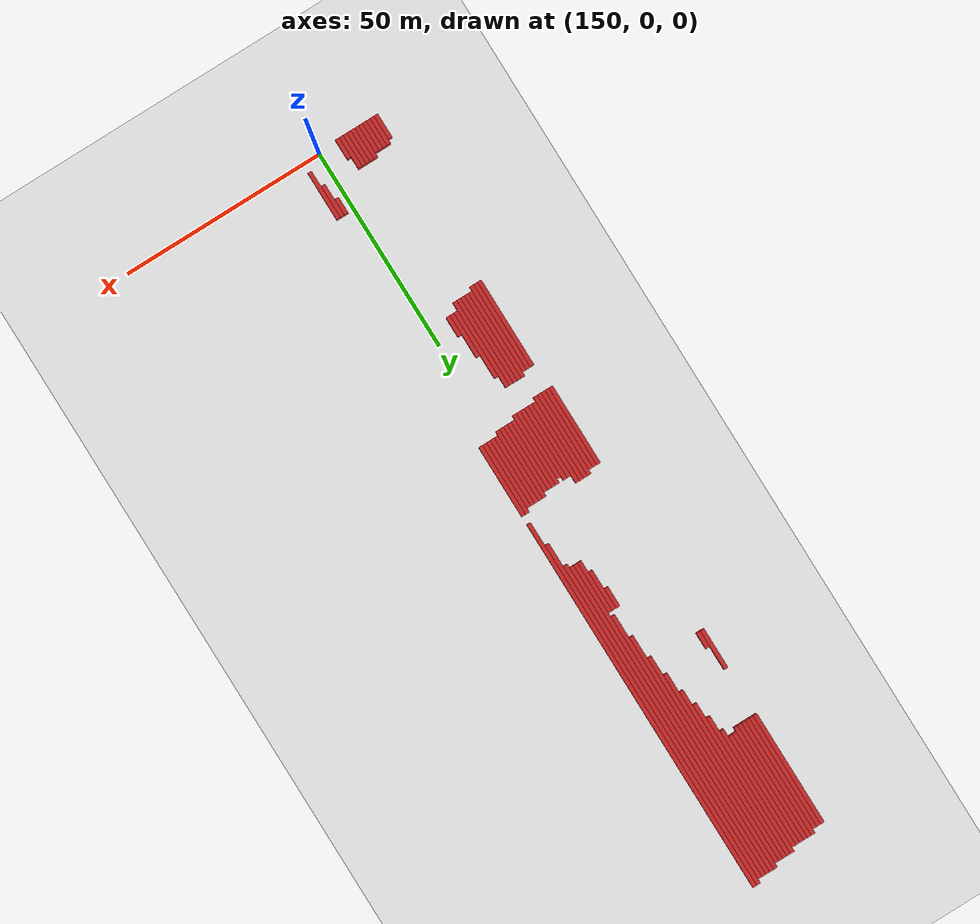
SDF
<sdf version="1.4">
 <world name="1_wall">
  <model name="ground_plane">
   <static>1</static>
   <link name="link">
    <collision name="collision">
     <geometry><plane><normal>0 0 1</normal><size>1000 1000</size></plane></geometry>
     <surface><friction><ode><mu>100</mu><mu2>50</mu2></ode></friction></surface>
    </collision>
    <visual name="visual">
     <cast_shadows>0</cast_shadows>
     <geometry><plane><normal>0 0 1</normal><size>10000 10000</size></plane></geometry>
     <material>
      <script><uri>file://media/materials/scripts/gazebo.material</uri><name>Gazebo/White</name></script>
     </material>
    </visual>
    <velocity_decay><linear>0</linear><angular>0</angular></velocity_decay>
   </link>
  </model>
  <model name="Wall_287">
   <static>1</static>
   <link name="Wall_287">
    <collision name="Wall_Collision_287">
     <geometry><box><size>20.0 1.0 2.5</size></box></geometry>
     <pose>0 0 1.25 0 -0 0</pose>
    </collision>
    <visual name="Wall_Visual_287">
     <pose>0 0 1.25 0 -0 0</pose>
     <geometry><box><size>20.0 1.0 2.5</size></box></geometry>
     <material>
      <script><uri>file://media/materials/scripts/gazebo.material</uri><name>Gazebo/Red</name></script>
     </material>
    </visual>
    <velocity_decay><linear>0</linear><angular>0</angular></velocity_decay>
    <pose>134.0 80.5 0 0 0 1.5707963267948966</pose>
   </link>
  </model>
  <model name="Wall_288">
   <static>1</static>
   <link name="Wall_288">
    <collision name="Wall_Collision_288">
     <geometry><box><size>10.0 1.0 2.5</size></box></geometry>
     <pose>0 0 1.25 0 -0 0</pose>
    </collision>
    <visual name="Wall_Visual_288">
     <pose>0 0 1.25 0 -0 0</pose>
     <geometry><box><size>10.0 1.0 2.5</size></box></geometry>
     <material>
      <script><uri>file://media/materials/scripts/gazebo.material</uri><name>Gazebo/Red</name></script>
     </material>
    </visual>
    <velocity_decay><linear>0</linear><angular>0</angular></velocity_decay>
    <pose>134.0 138.5 0 0 0 1.5707963267948966</pose>
   </link>
  </model>
  <model name="Wall_289">
   <static>1</static>
   <link name="Wall_289">
    <collision name="Wall_Collision_289">
     <geometry><box><size>28.0 1.0 2.5</size></box></geometry>
     <pose>0 0 1.25 0 -0 0</pose>
    </collision>
    <visual name="Wall_Visual_289">
     <pose>0 0 1.25 0 -0 0</pose>
     <geometry><box><size>28.0 1.0 2.5</size></box></geometry>
     <material>
      <script><uri>file://media/materials/scripts/gazebo.material</uri><name>Gazebo/Red</name></script>
     </material>
    </visual>
    <velocity_decay><linear>0</linear><angular>0</angular></velocity_decay>
    <pose>134.0 169.5 0 0 0 1.5707963267948966</pose>
   </link>
  </model>
  <model name="Wall_290">
   <static>1</static>
   <link name="Wall_290">
    <collision name="Wall_Collision_290">
     <geometry><box><size>6.0 1.0 2.5</size></box></geometry>
     <pose>0 0 1.25 0 -0 0</pose>
    </collision>
    <visual name="Wall_Visual_290">
     <pose>0 0 1.25 0 -0 0</pose>
     <geometry><box><size>6.0 1.0 2.5</size></box></geometry>
     <material>
      <script><uri>file://media/materials/scripts/gazebo.material</uri><name>Gazebo/Red</name></script>
     </material>
    </visual>
    <velocity_decay><linear>0</linear><angular>0</angular></velocity_decay>
    <pose>135.0 2.5 0 0 0 1.5707963267948966</pose>
   </link>
  </model>
  <model name="Wall_291">
   <static>1</static>
   <link name="Wall_291">
    <collision name="Wall_Collision_291">
     <geometry><box><size>22.0 1.0 2.5</size></box></geometry>
     <pose>0 0 1.25 0 -0 0</pose>
    </collision>
    <visual name="Wall_Visual_291">
     <pose>0 0 1.25 0 -0 0</pose>
     <geometry><box><size>22.0 1.0 2.5</size></box></geometry>
     <material>
      <script><uri>file://media/materials/scripts/gazebo.material</uri><name>Gazebo/Red</name></script>
     </material>
    </visual>
    <velocity_decay><linear>0</linear><angular>0</angular></velocity_decay>
    <pose>135.0 53.5 0 0 0 1.5707963267948966</pose>
   </link>
  </model>
  <model name="Wall_292">
   <static>1</static>
   <link name="Wall_292">
    <collision name="Wall_Collision_292">
     <geometry><box><size>20.0 1.0 2.5</size></box></geometry>
     <pose>0 0 1.25 0 -0 0</pose>
    </collision>
    <visual name="Wall_Visual_292">
     <pose>0 0 1.25 0 -0 0</pose>
     <geometry><box><size>20.0 1.0 2.5</size></box></geometry>
     <material>
      <script><uri>file://media/materials/scripts/gazebo.material</uri><name>Gazebo/Red</name></script>
     </material>
    </visual>
    <velocity_decay><linear>0</linear><angular>0</angular></velocity_decay>
    <pose>135.0 80.5 0 0 0 1.5707963267948966</pose>
   </link>
  </model>
  <model name="Wall_293">
   <static>1</static>
   <link name="Wall_293">
    <collision name="Wall_Collision_293">
     <geometry><box><size>4.0 1.0 2.5</size></box></geometry>
     <pose>0 0 1.25 0 -0 0</pose>
    </collision>
    <visual name="Wall_Visual_293">
     <pose>0 0 1.25 0 -0 0</pose>
     <geometry><box><size>4.0 1.0 2.5</size></box></geometry>
     <material>
      <script><uri>file://media/materials/scripts/gazebo.material</uri><name>Gazebo/Red</name></script>
     </material>
    </visual>
    <velocity_decay><linear>0</linear><angular>0</angular></velocity_decay>
    <pose>135.0 135.5 0 0 0 1.5707963267948966</pose>
   </link>
  </model>
  <model name="Wall_294">
   <static>1</static>
   <link name="Wall_294">
    <collision name="Wall_Collision_294">
     <geometry><box><size>28.0 1.0 2.5</size></box></geometry>
     <pose>0 0 1.25 0 -0 0</pose>
    </collision>
    <visual name="Wall_Visual_294">
     <pose>0 0 1.25 0 -0 0</pose>
     <geometry><box><size>28.0 1.0 2.5</size></box></geometry>
     <material>
      <script><uri>file://media/materials/scripts/gazebo.material</uri><name>Gazebo/Red</name></script>
     </material>
    </visual>
    <velocity_decay><linear>0</linear><angular>0</angular></velocity_decay>
    <pose>135.0 169.5 0 0 0 1.5707963267948966</pose>
   </link>
  </model>
  <model name="Wall_295">
   <static>1</static>
   <link name="Wall_295">
    <collision name="Wall_Collision_295">
     <geometry><box><size>7.0 1.0 2.5</size></box></geometry>
     <pose>0 0 1.25 0 -0 0</pose>
    </collision>
    <visual name="Wall_Visual_295">
     <pose>0 0 1.25 0 -0 0</pose>
     <geometry><box><size>7.0 1.0 2.5</size></box></geometry>
     <material>
      <script><uri>file://media/materials/scripts/gazebo.material</uri><name>Gazebo/Red</name></script>
     </material>
    </visual>
    <velocity_decay><linear>0</linear><angular>0</angular></velocity_decay>
    <pose>136.0 3.0 0 0 0 1.5707963267948966</pose>
   </link>
  </model>
  <model name="Wall_296">
   <static>1</static>
   <link name="Wall_296">
    <collision name="Wall_Collision_296">
     <geometry><box><size>22.0 1.0 2.5</size></box></geometry>
     <pose>0 0 1.25 0 -0 0</pose>
    </collision>
    <visual name="Wall_Visual_296">
     <pose>0 0 1.25 0 -0 0</pose>
     <geometry><box><size>22.0 1.0 2.5</size></box></geometry>
     <material>
      <script><uri>file://media/materials/scripts/gazebo.material</uri><name>Gazebo/Red</name></script>
     </material>
    </visual>
    <velocity_decay><linear>0</linear><angular>0</angular></velocity_decay>
    <pose>136.0 53.5 0 0 0 1.5707963267948966</pose>
   </link>
  </model>
  <model name="Wall_297">
   <static>1</static>
   <link name="Wall_297">
    <collision name="Wall_Collision_297">
     <geometry><box><size>20.0 1.0 2.5</size></box></geometry>
     <pose>0 0 1.25 0 -0 0</pose>
    </collision>
    <visual name="Wall_Visual_297">
     <pose>0 0 1.25 0 -0 0</pose>
     <geometry><box><size>20.0 1.0 2.5</size></box></geometry>
     <material>
      <script><uri>file://media/materials/scripts/gazebo.material</uri><name>Gazebo/Red</name></script>
     </material>
    </visual>
    <velocity_decay><linear>0</linear><angular>0</angular></velocity_decay>
    <pose>136.0 80.5 0 0 0 1.5707963267948966</pose>
   </link>
  </model>
  <model name="Wall_298">
   <static>1</static>
   <link name="Wall_298">
    <collision name="Wall_Collision_298">
     <geometry><box><size>28.0 1.0 2.5</size></box></geometry>
     <pose>0 0 1.25 0 -0 0</pose>
    </collision>
    <visual name="Wall_Visual_298">
     <pose>0 0 1.25 0 -0 0</pose>
     <geometry><box><size>28.0 1.0 2.5</size></box></geometry>
     <material>
      <script><uri>file://media/materials/scripts/gazebo.material</uri><name>Gazebo/Red</name></script>
     </material>
    </visual>
    <velocity_decay><linear>0</linear><angular>0</angular></velocity_decay>
    <pose>136.0 169.5 0 0 0 1.5707963267948966</pose>
   </link>
  </model>
  <model name="Wall_299">
   <static>1</static>
   <link name="Wall_299">
    <collision name="Wall_Collision_299">
     <geometry><box><size>7.0 1.0 2.5</size></box></geometry>
     <pose>0 0 1.25 0 -0 0</pose>
    </collision>
    <visual name="Wall_Visual_299">
     <pose>0 0 1.25 0 -0 0</pose>
     <geometry><box><size>7.0 1.0 2.5</size></box></geometry>
     <material>
      <script><uri>file://media/materials/scripts/gazebo.material</uri><name>Gazebo/Red</name></script>
     </material>
    </visual>
    <velocity_decay><linear>0</linear><angular>0</angular></velocity_decay>
    <pose>137.0 3.0 0 0 0 1.5707963267948966</pose>
   </link>
  </model>
  <model name="Wall_300">
   <static>1</static>
   <link name="Wall_300">
    <collision name="Wall_Collision_300">
     <geometry><box><size>22.0 1.0 2.5</size></box></geometry>
     <pose>0 0 1.25 0 -0 0</pose>
    </collision>
    <visual name="Wall_Visual_300">
     <pose>0 0 1.25 0 -0 0</pose>
     <geometry><box><size>22.0 1.0 2.5</size></box></geometry>
     <material>
      <script><uri>file://media/materials/scripts/gazebo.material</uri><name>Gazebo/Red</name></script>
     </material>
    </visual>
    <velocity_decay><linear>0</linear><angular>0</angular></velocity_decay>
    <pose>137.0 53.5 0 0 0 1.5707963267948966</pose>
   </link>
  </model>
  <model name="Wall_301">
   <static>1</static>
   <link name="Wall_301">
    <collision name="Wall_Collision_301">
     <geometry><box><size>21.0 1.0 2.5</size></box></geometry>
     <pose>0 0 1.25 0 -0 0</pose>
    </collision>
    <visual name="Wall_Visual_301">
     <pose>0 0 1.25 0 -0 0</pose>
     <geometry><box><size>21.0 1.0 2.5</size></box></geometry>
     <material>
      <script><uri>file://media/materials/scripts/gazebo.material</uri><name>Gazebo/Red</name></script>
     </material>
    </visual>
    <velocity_decay><linear>0</linear><angular>0</angular></velocity_decay>
    <pose>137.0 81.0 0 0 0 1.5707963267948966</pose>
   </link>
  </model>
  <model name="Wall_302">
   <static>1</static>
   <link name="Wall_302">
    <collision name="Wall_Collision_302">
     <geometry><box><size>29.0 1.0 2.5</size></box></geometry>
     <pose>0 0 1.25 0 -0 0</pose>
    </collision>
    <visual name="Wall_Visual_302">
     <pose>0 0 1.25 0 -0 0</pose>
     <geometry><box><size>29.0 1.0 2.5</size></box></geometry>
     <material>
      <script><uri>file://media/materials/scripts/gazebo.material</uri><name>Gazebo/Red</name></script>
     </material>
    </visual>
    <velocity_decay><linear>0</linear><angular>0</angular></velocity_decay>
    <pose>137.0 170.0 0 0 0 1.5707963267948966</pose>
   </link>
  </model>
  <model name="Wall_303">
   <static>1</static>
   <link name="Wall_303">
    <collision name="Wall_Collision_303">
     <geometry><box><size>7.0 1.0 2.5</size></box></geometry>
     <pose>0 0 1.25 0 -0 0</pose>
    </collision>
    <visual name="Wall_Visual_303">
     <pose>0 0 1.25 0 -0 0</pose>
     <geometry><box><size>7.0 1.0 2.5</size></box></geometry>
     <material>
      <script><uri>file://media/materials/scripts/gazebo.material</uri><name>Gazebo/Red</name></script>
     </material>
    </visual>
    <velocity_decay><linear>0</linear><angular>0</angular></velocity_decay>
    <pose>138.0 3.0 0 0 0 1.5707963267948966</pose>
   </link>
  </model>
  <model name="Wall_304">
   <static>1</static>
   <link name="Wall_304">
    <collision name="Wall_Collision_304">
     <geometry><box><size>22.0 1.0 2.5</size></box></geometry>
     <pose>0 0 1.25 0 -0 0</pose>
    </collision>
    <visual name="Wall_Visual_304">
     <pose>0 0 1.25 0 -0 0</pose>
     <geometry><box><size>22.0 1.0 2.5</size></box></geometry>
     <material>
      <script><uri>file://media/materials/scripts/gazebo.material</uri><name>Gazebo/Red</name></script>
     </material>
    </visual>
    <velocity_decay><linear>0</linear><angular>0</angular></velocity_decay>
    <pose>138.0 54.5 0 0 0 1.5707963267948966</pose>
   </link>
  </model>
  <model name="Wall_305">
   <static>1</static>
   <link name="Wall_305">
    <collision name="Wall_Collision_305">
     <geometry><box><size>21.0 1.0 2.5</size></box></geometry>
     <pose>0 0 1.25 0 -0 0</pose>
    </collision>
    <visual name="Wall_Visual_305">
     <pose>0 0 1.25 0 -0 0</pose>
     <geometry><box><size>21.0 1.0 2.5</size></box></geometry>
     <material>
      <script><uri>file://media/materials/scripts/gazebo.material</uri><name>Gazebo/Red</name></script>
     </material>
    </visual>
    <velocity_decay><linear>0</linear><angular>0</angular></velocity_decay>
    <pose>138.0 81.0 0 0 0 1.5707963267948966</pose>
   </link>
  </model>
  <model name="Wall_306">
   <static>1</static>
   <link name="Wall_306">
    <collision name="Wall_Collision_306">
     <geometry><box><size>29.0 1.0 2.5</size></box></geometry>
     <pose>0 0 1.25 0 -0 0</pose>
    </collision>
    <visual name="Wall_Visual_306">
     <pose>0 0 1.25 0 -0 0</pose>
     <geometry><box><size>29.0 1.0 2.5</size></box></geometry>
     <material>
      <script><uri>file://media/materials/scripts/gazebo.material</uri><name>Gazebo/Red</name></script>
     </material>
    </visual>
    <velocity_decay><linear>0</linear><angular>0</angular></velocity_decay>
    <pose>138.0 170.0 0 0 0 1.5707963267948966</pose>
   </link>
  </model>
  <model name="Wall_307">
   <static>1</static>
   <link name="Wall_307">
    <collision name="Wall_Collision_307">
     <geometry><box><size>7.0 1.0 2.5</size></box></geometry>
     <pose>0 0 1.25 0 -0 0</pose>
    </collision>
    <visual name="Wall_Visual_307">
     <pose>0 0 1.25 0 -0 0</pose>
     <geometry><box><size>7.0 1.0 2.5</size></box></geometry>
     <material>
      <script><uri>file://media/materials/scripts/gazebo.material</uri><name>Gazebo/Red</name></script>
     </material>
    </visual>
    <velocity_decay><linear>0</linear><angular>0</angular></velocity_decay>
    <pose>139.0 3.0 0 0 0 1.5707963267948966</pose>
   </link>
  </model>
  <model name="Wall_308">
   <static>1</static>
   <link name="Wall_308">
    <collision name="Wall_Collision_308">
     <geometry><box><size>22.0 1.0 2.5</size></box></geometry>
     <pose>0 0 1.25 0 -0 0</pose>
    </collision>
    <visual name="Wall_Visual_308">
     <pose>0 0 1.25 0 -0 0</pose>
     <geometry><box><size>22.0 1.0 2.5</size></box></geometry>
     <material>
      <script><uri>file://media/materials/scripts/gazebo.material</uri><name>Gazebo/Red</name></script>
     </material>
    </visual>
    <velocity_decay><linear>0</linear><angular>0</angular></velocity_decay>
    <pose>139.0 54.5 0 0 0 1.5707963267948966</pose>
   </link>
  </model>
  <model name="Wall_309">
   <static>1</static>
   <link name="Wall_309">
    <collision name="Wall_Collision_309">
     <geometry><box><size>20.0 1.0 2.5</size></box></geometry>
     <pose>0 0 1.25 0 -0 0</pose>
    </collision>
    <visual name="Wall_Visual_309">
     <pose>0 0 1.25 0 -0 0</pose>
     <geometry><box><size>20.0 1.0 2.5</size></box></geometry>
     <material>
      <script><uri>file://media/materials/scripts/gazebo.material</uri><name>Gazebo/Red</name></script>
     </material>
    </visual>
    <velocity_decay><linear>0</linear><angular>0</angular></velocity_decay>
    <pose>139.0 81.5 0 0 0 1.5707963267948966</pose>
   </link>
  </model>
  <model name="Wall_310">
   <static>1</static>
   <link name="Wall_310">
    <collision name="Wall_Collision_310">
     <geometry><box><size>29.0 1.0 2.5</size></box></geometry>
     <pose>0 0 1.25 0 -0 0</pose>
    </collision>
    <visual name="Wall_Visual_310">
     <pose>0 0 1.25 0 -0 0</pose>
     <geometry><box><size>29.0 1.0 2.5</size></box></geometry>
     <material>
      <script><uri>file://media/materials/scripts/gazebo.material</uri><name>Gazebo/Red</name></script>
     </material>
    </visual>
    <velocity_decay><linear>0</linear><angular>0</angular></velocity_decay>
    <pose>139.0 170.0 0 0 0 1.5707963267948966</pose>
   </link>
  </model>
  <model name="Wall_311">
   <static>1</static>
   <link name="Wall_311">
    <collision name="Wall_Collision_311">
     <geometry><box><size>8.0 1.0 2.5</size></box></geometry>
     <pose>0 0 1.25 0 -0 0</pose>
    </collision>
    <visual name="Wall_Visual_311">
     <pose>0 0 1.25 0 -0 0</pose>
     <geometry><box><size>8.0 1.0 2.5</size></box></geometry>
     <material>
      <script><uri>file://media/materials/scripts/gazebo.material</uri><name>Gazebo/Red</name></script>
     </material>
    </visual>
    <velocity_decay><linear>0</linear><angular>0</angular></velocity_decay>
    <pose>140.0 3.5 0 0 0 1.5707963267948966</pose>
   </link>
  </model>
  <model name="Wall_312">
   <static>1</static>
   <link name="Wall_312">
    <collision name="Wall_Collision_312">
     <geometry><box><size>22.0 1.0 2.5</size></box></geometry>
     <pose>0 0 1.25 0 -0 0</pose>
    </collision>
    <visual name="Wall_Visual_312">
     <pose>0 0 1.25 0 -0 0</pose>
     <geometry><box><size>22.0 1.0 2.5</size></box></geometry>
     <material>
      <script><uri>file://media/materials/scripts/gazebo.material</uri><name>Gazebo/Red</name></script>
     </material>
    </visual>
    <velocity_decay><linear>0</linear><angular>0</angular></velocity_decay>
    <pose>140.0 54.5 0 0 0 1.5707963267948966</pose>
   </link>
  </model>
  <model name="Wall_313">
   <static>1</static>
   <link name="Wall_313">
    <collision name="Wall_Collision_313">
     <geometry><box><size>20.0 1.0 2.5</size></box></geometry>
     <pose>0 0 1.25 0 -0 0</pose>
    </collision>
    <visual name="Wall_Visual_313">
     <pose>0 0 1.25 0 -0 0</pose>
     <geometry><box><size>20.0 1.0 2.5</size></box></geometry>
     <material>
      <script><uri>file://media/materials/scripts/gazebo.material</uri><name>Gazebo/Red</name></script>
     </material>
    </visual>
    <velocity_decay><linear>0</linear><angular>0</angular></velocity_decay>
    <pose>140.0 81.5 0 0 0 1.5707963267948966</pose>
   </link>
  </model>
  <model name="Wall_314">
   <static>1</static>
   <link name="Wall_314">
    <collision name="Wall_Collision_314">
     <geometry><box><size>28.0 1.0 2.5</size></box></geometry>
     <pose>0 0 1.25 0 -0 0</pose>
    </collision>
    <visual name="Wall_Visual_314">
     <pose>0 0 1.25 0 -0 0</pose>
     <geometry><box><size>28.0 1.0 2.5</size></box></geometry>
     <material>
      <script><uri>file://media/materials/scripts/gazebo.material</uri><name>Gazebo/Red</name></script>
     </material>
    </visual>
    <velocity_decay><linear>0</linear><angular>0</angular></velocity_decay>
    <pose>140.0 170.5 0 0 0 1.5707963267948966</pose>
   </link>
  </model>
  <model name="Wall_315">
   <static>1</static>
   <link name="Wall_315">
    <collision name="Wall_Collision_315">
     <geometry><box><size>8.0 1.0 2.5</size></box></geometry>
     <pose>0 0 1.25 0 -0 0</pose>
    </collision>
    <visual name="Wall_Visual_315">
     <pose>0 0 1.25 0 -0 0</pose>
     <geometry><box><size>8.0 1.0 2.5</size></box></geometry>
     <material>
      <script><uri>file://media/materials/scripts/gazebo.material</uri><name>Gazebo/Red</name></script>
     </material>
    </visual>
    <velocity_decay><linear>0</linear><angular>0</angular></velocity_decay>
    <pose>141.0 3.5 0 0 0 1.5707963267948966</pose>
   </link>
  </model>
  <model name="Wall_316">
   <static>1</static>
   <link name="Wall_316">
    <collision name="Wall_Collision_316">
     <geometry><box><size>22.0 1.0 2.5</size></box></geometry>
     <pose>0 0 1.25 0 -0 0</pose>
    </collision>
    <visual name="Wall_Visual_316">
     <pose>0 0 1.25 0 -0 0</pose>
     <geometry><box><size>22.0 1.0 2.5</size></box></geometry>
     <material>
      <script><uri>file://media/materials/scripts/gazebo.material</uri><name>Gazebo/Red</name></script>
     </material>
    </visual>
    <velocity_decay><linear>0</linear><angular>0</angular></velocity_decay>
    <pose>141.0 54.5 0 0 0 1.5707963267948966</pose>
   </link>
  </model>
  <model name="Wall_317">
   <static>1</static>
   <link name="Wall_317">
    <collision name="Wall_Collision_317">
     <geometry><box><size>18.0 1.0 2.5</size></box></geometry>
     <pose>0 0 1.25 0 -0 0</pose>
    </collision>
    <visual name="Wall_Visual_317">
     <pose>0 0 1.25 0 -0 0</pose>
     <geometry><box><size>18.0 1.0 2.5</size></box></geometry>
     <material>
      <script><uri>file://media/materials/scripts/gazebo.material</uri><name>Gazebo/Red</name></script>
     </material>
    </visual>
    <velocity_decay><linear>0</linear><angular>0</angular></velocity_decay>
    <pose>141.0 80.5 0 0 0 1.5707963267948966</pose>
   </link>
  </model>
  <model name="Wall_318">
   <static>1</static>
   <link name="Wall_318">
    <collision name="Wall_Collision_318">
     <geometry><box><size>28.0 1.0 2.5</size></box></geometry>
     <pose>0 0 1.25 0 -0 0</pose>
    </collision>
    <visual name="Wall_Visual_318">
     <pose>0 0 1.25 0 -0 0</pose>
     <geometry><box><size>28.0 1.0 2.5</size></box></geometry>
     <material>
      <script><uri>file://media/materials/scripts/gazebo.material</uri><name>Gazebo/Red</name></script>
     </material>
    </visual>
    <velocity_decay><linear>0</linear><angular>0</angular></velocity_decay>
    <pose>141.0 170.5 0 0 0 1.5707963267948966</pose>
   </link>
  </model>
  <model name="Wall_319">
   <static>1</static>
   <link name="Wall_319">
    <collision name="Wall_Collision_319">
     <geometry><box><size>8.0 1.0 2.5</size></box></geometry>
     <pose>0 0 1.25 0 -0 0</pose>
    </collision>
    <visual name="Wall_Visual_319">
     <pose>0 0 1.25 0 -0 0</pose>
     <geometry><box><size>8.0 1.0 2.5</size></box></geometry>
     <material>
      <script><uri>file://media/materials/scripts/gazebo.material</uri><name>Gazebo/Red</name></script>
     </material>
    </visual>
    <velocity_decay><linear>0</linear><angular>0</angular></velocity_decay>
    <pose>142.0 3.5 0 0 0 1.5707963267948966</pose>
   </link>
  </model>
  <model name="Wall_320">
   <static>1</static>
   <link name="Wall_320">
    <collision name="Wall_Collision_320">
     <geometry><box><size>22.0 1.0 2.5</size></box></geometry>
     <pose>0 0 1.25 0 -0 0</pose>
    </collision>
    <visual name="Wall_Visual_320">
     <pose>0 0 1.25 0 -0 0</pose>
     <geometry><box><size>22.0 1.0 2.5</size></box></geometry>
     <material>
      <script><uri>file://media/materials/scripts/gazebo.material</uri><name>Gazebo/Red</name></script>
     </material>
    </visual>
    <velocity_decay><linear>0</linear><angular>0</angular></velocity_decay>
    <pose>142.0 54.5 0 0 0 1.5707963267948966</pose>
   </link>
  </model>
  <model name="Wall_321">
   <static>1</static>
   <link name="Wall_321">
    <collision name="Wall_Collision_321">
     <geometry><box><size>18.0 1.0 2.5</size></box></geometry>
     <pose>0 0 1.25 0 -0 0</pose>
    </collision>
    <visual name="Wall_Visual_321">
     <pose>0 0 1.25 0 -0 0</pose>
     <geometry><box><size>18.0 1.0 2.5</size></box></geometry>
     <material>
      <script><uri>file://media/materials/scripts/gazebo.material</uri><name>Gazebo/Red</name></script>
     </material>
    </visual>
    <velocity_decay><linear>0</linear><angular>0</angular></velocity_decay>
    <pose>142.0 80.5 0 0 0 1.5707963267948966</pose>
   </link>
  </model>
  <model name="Wall_322">
   <static>1</static>
   <link name="Wall_322">
    <collision name="Wall_Collision_322">
     <geometry><box><size>30.0 1.0 2.5</size></box></geometry>
     <pose>0 0 1.25 0 -0 0</pose>
    </collision>
    <visual name="Wall_Visual_322">
     <pose>0 0 1.25 0 -0 0</pose>
     <geometry><box><size>30.0 1.0 2.5</size></box></geometry>
     <material>
      <script><uri>file://media/materials/scripts/gazebo.material</uri><name>Gazebo/Red</name></script>
     </material>
    </visual>
    <velocity_decay><linear>0</linear><angular>0</angular></velocity_decay>
    <pose>142.0 169.5 0 0 0 1.5707963267948966</pose>
   </link>
  </model>
  <model name="Wall_323">
   <static>1</static>
   <link name="Wall_323">
    <collision name="Wall_Collision_323">
     <geometry><box><size>8.0 1.0 2.5</size></box></geometry>
     <pose>0 0 1.25 0 -0 0</pose>
    </collision>
    <visual name="Wall_Visual_323">
     <pose>0 0 1.25 0 -0 0</pose>
     <geometry><box><size>8.0 1.0 2.5</size></box></geometry>
     <material>
      <script><uri>file://media/materials/scripts/gazebo.material</uri><name>Gazebo/Red</name></script>
     </material>
    </visual>
    <velocity_decay><linear>0</linear><angular>0</angular></velocity_decay>
    <pose>143.0 3.5 0 0 0 1.5707963267948966</pose>
   </link>
  </model>
  <model name="Wall_324">
   <static>1</static>
   <link name="Wall_324">
    <collision name="Wall_Collision_324">
     <geometry><box><size>17.0 1.0 2.5</size></box></geometry>
     <pose>0 0 1.25 0 -0 0</pose>
    </collision>
    <visual name="Wall_Visual_324">
     <pose>0 0 1.25 0 -0 0</pose>
     <geometry><box><size>17.0 1.0 2.5</size></box></geometry>
     <material>
      <script><uri>file://media/materials/scripts/gazebo.material</uri><name>Gazebo/Red</name></script>
     </material>
    </visual>
    <velocity_decay><linear>0</linear><angular>0</angular></velocity_decay>
    <pose>143.0 54.0 0 0 0 1.5707963267948966</pose>
   </link>
  </model>
  <model name="Wall_325">
   <static>1</static>
   <link name="Wall_325">
    <collision name="Wall_Collision_325">
     <geometry><box><size>17.0 1.0 2.5</size></box></geometry>
     <pose>0 0 1.25 0 -0 0</pose>
    </collision>
    <visual name="Wall_Visual_325">
     <pose>0 0 1.25 0 -0 0</pose>
     <geometry><box><size>17.0 1.0 2.5</size></box></geometry>
     <material>
      <script><uri>file://media/materials/scripts/gazebo.material</uri><name>Gazebo/Red</name></script>
     </material>
    </visual>
    <velocity_decay><linear>0</linear><angular>0</angular></velocity_decay>
    <pose>143.0 80.0 0 0 0 1.5707963267948966</pose>
   </link>
  </model>
  <model name="Wall_326">
   <static>1</static>
   <link name="Wall_326">
    <collision name="Wall_Collision_326">
     <geometry><box><size>35.0 1.0 2.5</size></box></geometry>
     <pose>0 0 1.25 0 -0 0</pose>
    </collision>
    <visual name="Wall_Visual_326">
     <pose>0 0 1.25 0 -0 0</pose>
     <geometry><box><size>35.0 1.0 2.5</size></box></geometry>
     <material>
      <script><uri>file://media/materials/scripts/gazebo.material</uri><name>Gazebo/Red</name></script>
     </material>
    </visual>
    <velocity_decay><linear>0</linear><angular>0</angular></velocity_decay>
    <pose>143.0 168.0 0 0 0 1.5707963267948966</pose>
   </link>
  </model>
  <model name="Wall_327">
   <static>1</static>
   <link name="Wall_327">
    <collision name="Wall_Collision_327">
     <geometry><box><size>8.0 1.0 2.5</size></box></geometry>
     <pose>0 0 1.25 0 -0 0</pose>
    </collision>
    <visual name="Wall_Visual_327">
     <pose>0 0 1.25 0 -0 0</pose>
     <geometry><box><size>8.0 1.0 2.5</size></box></geometry>
     <material>
      <script><uri>file://media/materials/scripts/gazebo.material</uri><name>Gazebo/Red</name></script>
     </material>
    </visual>
    <velocity_decay><linear>0</linear><angular>0</angular></velocity_decay>
    <pose>144.0 3.5 0 0 0 1.5707963267948966</pose>
   </link>
  </model>
  <model name="Wall_328">
   <static>1</static>
   <link name="Wall_328">
    <collision name="Wall_Collision_328">
     <geometry><box><size>11.0 1.0 2.5</size></box></geometry>
     <pose>0 0 1.25 0 -0 0</pose>
    </collision>
    <visual name="Wall_Visual_328">
     <pose>0 0 1.25 0 -0 0</pose>
     <geometry><box><size>11.0 1.0 2.5</size></box></geometry>
     <material>
      <script><uri>file://media/materials/scripts/gazebo.material</uri><name>Gazebo/Red</name></script>
     </material>
    </visual>
    <velocity_decay><linear>0</linear><angular>0</angular></velocity_decay>
    <pose>144.0 51.0 0 0 0 1.5707963267948966</pose>
   </link>
  </model>
  <model name="Wall_329">
   <static>1</static>
   <link name="Wall_329">
    <collision name="Wall_Collision_329">
     <geometry><box><size>18.0 1.0 2.5</size></box></geometry>
     <pose>0 0 1.25 0 -0 0</pose>
    </collision>
    <visual name="Wall_Visual_329">
     <pose>0 0 1.25 0 -0 0</pose>
     <geometry><box><size>18.0 1.0 2.5</size></box></geometry>
     <material>
      <script><uri>file://media/materials/scripts/gazebo.material</uri><name>Gazebo/Red</name></script>
     </material>
    </visual>
    <velocity_decay><linear>0</linear><angular>0</angular></velocity_decay>
    <pose>144.0 80.5 0 0 0 1.5707963267948966</pose>
   </link>
  </model>
  <model name="Wall_330">
   <static>1</static>
   <link name="Wall_330">
    <collision name="Wall_Collision_330">
     <geometry><box><size>39.0 1.0 2.5</size></box></geometry>
     <pose>0 0 1.25 0 -0 0</pose>
    </collision>
    <visual name="Wall_Visual_330">
     <pose>0 0 1.25 0 -0 0</pose>
     <geometry><box><size>39.0 1.0 2.5</size></box></geometry>
     <material>
      <script><uri>file://media/materials/scripts/gazebo.material</uri><name>Gazebo/Red</name></script>
     </material>
    </visual>
    <velocity_decay><linear>0</linear><angular>0</angular></velocity_decay>
    <pose>144.0 166.0 0 0 0 1.5707963267948966</pose>
   </link>
  </model>
  <model name="Wall_331">
   <static>1</static>
   <link name="Wall_331">
    <collision name="Wall_Collision_331">
     <geometry><box><size>5.0 1.0 2.5</size></box></geometry>
     <pose>0 0 1.25 0 -0 0</pose>
    </collision>
    <visual name="Wall_Visual_331">
     <pose>0 0 1.25 0 -0 0</pose>
     <geometry><box><size>5.0 1.0 2.5</size></box></geometry>
     <material>
      <script><uri>file://media/materials/scripts/gazebo.material</uri><name>Gazebo/Red</name></script>
     </material>
    </visual>
    <velocity_decay><linear>0</linear><angular>0</angular></velocity_decay>
    <pose>145.0 2.0 0 0 0 1.5707963267948966</pose>
   </link>
  </model>
  <model name="Wall_332">
   <static>1</static>
   <link name="Wall_332">
    <collision name="Wall_Collision_332">
     <geometry><box><size>5.0 1.0 2.5</size></box></geometry>
     <pose>0 0 1.25 0 -0 0</pose>
    </collision>
    <visual name="Wall_Visual_332">
     <pose>0 0 1.25 0 -0 0</pose>
     <geometry><box><size>5.0 1.0 2.5</size></box></geometry>
     <material>
      <script><uri>file://media/materials/scripts/gazebo.material</uri><name>Gazebo/Red</name></script>
     </material>
    </visual>
    <velocity_decay><linear>0</linear><angular>0</angular></velocity_decay>
    <pose>145.0 48.0 0 0 0 1.5707963267948966</pose>
   </link>
  </model>
  <model name="Wall_333">
   <static>1</static>
   <link name="Wall_333">
    <collision name="Wall_Collision_333">
     <geometry><box><size>17.0 1.0 2.5</size></box></geometry>
     <pose>0 0 1.25 0 -0 0</pose>
    </collision>
    <visual name="Wall_Visual_333">
     <pose>0 0 1.25 0 -0 0</pose>
     <geometry><box><size>17.0 1.0 2.5</size></box></geometry>
     <material>
      <script><uri>file://media/materials/scripts/gazebo.material</uri><name>Gazebo/Red</name></script>
     </material>
    </visual>
    <velocity_decay><linear>0</linear><angular>0</angular></velocity_decay>
    <pose>145.0 81.0 0 0 0 1.5707963267948966</pose>
   </link>
  </model>
  <model name="Wall_334">
   <static>1</static>
   <link name="Wall_334">
    <collision name="Wall_Collision_334">
     <geometry><box><size>43.0 1.0 2.5</size></box></geometry>
     <pose>0 0 1.25 0 -0 0</pose>
    </collision>
    <visual name="Wall_Visual_334">
     <pose>0 0 1.25 0 -0 0</pose>
     <geometry><box><size>43.0 1.0 2.5</size></box></geometry>
     <material>
      <script><uri>file://media/materials/scripts/gazebo.material</uri><name>Gazebo/Red</name></script>
     </material>
    </visual>
    <velocity_decay><linear>0</linear><angular>0</angular></velocity_decay>
    <pose>145.0 164.0 0 0 0 1.5707963267948966</pose>
   </link>
  </model>
  <model name="Wall_335">
   <static>1</static>
   <link name="Wall_335">
    <collision name="Wall_Collision_335">
     <geometry><box><size>17.0 1.0 2.5</size></box></geometry>
     <pose>0 0 1.25 0 -0 0</pose>
    </collision>
    <visual name="Wall_Visual_335">
     <pose>0 0 1.25 0 -0 0</pose>
     <geometry><box><size>17.0 1.0 2.5</size></box></geometry>
     <material>
      <script><uri>file://media/materials/scripts/gazebo.material</uri><name>Gazebo/Red</name></script>
     </material>
    </visual>
    <velocity_decay><linear>0</linear><angular>0</angular></velocity_decay>
    <pose>146.0 81.0 0 0 0 1.5707963267948966</pose>
   </link>
  </model>
  <model name="Wall_336">
   <static>1</static>
   <link name="Wall_336">
    <collision name="Wall_Collision_336">
     <geometry><box><size>48.0 1.0 2.5</size></box></geometry>
     <pose>0 0 1.25 0 -0 0</pose>
    </collision>
    <visual name="Wall_Visual_336">
     <pose>0 0 1.25 0 -0 0</pose>
     <geometry><box><size>48.0 1.0 2.5</size></box></geometry>
     <material>
      <script><uri>file://media/materials/scripts/gazebo.material</uri><name>Gazebo/Red</name></script>
     </material>
    </visual>
    <velocity_decay><linear>0</linear><angular>0</angular></velocity_decay>
    <pose>146.0 161.5 0 0 0 1.5707963267948966</pose>
   </link>
  </model>
  <model name="Wall_337">
   <static>1</static>
   <link name="Wall_337">
    <collision name="Wall_Collision_337">
     <geometry><box><size>17.0 1.0 2.5</size></box></geometry>
     <pose>0 0 1.25 0 -0 0</pose>
    </collision>
    <visual name="Wall_Visual_337">
     <pose>0 0 1.25 0 -0 0</pose>
     <geometry><box><size>17.0 1.0 2.5</size></box></geometry>
     <material>
      <script><uri>file://media/materials/scripts/gazebo.material</uri><name>Gazebo/Red</name></script>
     </material>
    </visual>
    <velocity_decay><linear>0</linear><angular>0</angular></velocity_decay>
    <pose>147.0 81.0 0 0 0 1.5707963267948966</pose>
   </link>
  </model>
  <model name="Wall_338">
   <static>1</static>
   <link name="Wall_338">
    <collision name="Wall_Collision_338">
     <geometry><box><size>5.0 1.0 2.5</size></box></geometry>
     <pose>0 0 1.25 0 -0 0</pose>
    </collision>
    <visual name="Wall_Visual_338">
     <pose>0 0 1.25 0 -0 0</pose>
     <geometry><box><size>5.0 1.0 2.5</size></box></geometry>
     <material>
      <script><uri>file://media/materials/scripts/gazebo.material</uri><name>Gazebo/Red</name></script>
     </material>
    </visual>
    <velocity_decay><linear>0</linear><angular>0</angular></velocity_decay>
    <pose>147.0 117.0 0 0 0 1.5707963267948966</pose>
   </link>
  </model>
  <model name="Wall_339">
   <static>1</static>
   <link name="Wall_339">
    <collision name="Wall_Collision_339">
     <geometry><box><size>53.0 1.0 2.5</size></box></geometry>
     <pose>0 0 1.25 0 -0 0</pose>
    </collision>
    <visual name="Wall_Visual_339">
     <pose>0 0 1.25 0 -0 0</pose>
     <geometry><box><size>53.0 1.0 2.5</size></box></geometry>
     <material>
      <script><uri>file://media/materials/scripts/gazebo.material</uri><name>Gazebo/Red</name></script>
     </material>
    </visual>
    <velocity_decay><linear>0</linear><angular>0</angular></velocity_decay>
    <pose>147.0 159.0 0 0 0 1.5707963267948966</pose>
   </link>
  </model>
  <model name="Wall_340">
   <static>1</static>
   <link name="Wall_340">
    <collision name="Wall_Collision_340">
     <geometry><box><size>18.0 1.0 2.5</size></box></geometry>
     <pose>0 0 1.25 0 -0 0</pose>
    </collision>
    <visual name="Wall_Visual_340">
     <pose>0 0 1.25 0 -0 0</pose>
     <geometry><box><size>18.0 1.0 2.5</size></box></geometry>
     <material>
      <script><uri>file://media/materials/scripts/gazebo.material</uri><name>Gazebo/Red</name></script>
     </material>
    </visual>
    <velocity_decay><linear>0</linear><angular>0</angular></velocity_decay>
    <pose>148.0 81.5 0 0 0 1.5707963267948966</pose>
   </link>
  </model>
  <model name="Wall_341">
   <static>1</static>
   <link name="Wall_341">
    <collision name="Wall_Collision_341">
     <geometry><box><size>10.0 1.0 2.5</size></box></geometry>
     <pose>0 0 1.25 0 -0 0</pose>
    </collision>
    <visual name="Wall_Visual_341">
     <pose>0 0 1.25 0 -0 0</pose>
     <geometry><box><size>10.0 1.0 2.5</size></box></geometry>
     <material>
      <script><uri>file://media/materials/scripts/gazebo.material</uri><name>Gazebo/Red</name></script>
     </material>
    </visual>
    <velocity_decay><linear>0</linear><angular>0</angular></velocity_decay>
    <pose>148.0 114.5 0 0 0 1.5707963267948966</pose>
   </link>
  </model>
  <model name="Wall_342">
   <static>1</static>
   <link name="Wall_342">
    <collision name="Wall_Collision_342">
     <geometry><box><size>60.0 1.0 2.5</size></box></geometry>
     <pose>0 0 1.25 0 -0 0</pose>
    </collision>
    <visual name="Wall_Visual_342">
     <pose>0 0 1.25 0 -0 0</pose>
     <geometry><box><size>60.0 1.0 2.5</size></box></geometry>
     <material>
      <script><uri>file://media/materials/scripts/gazebo.material</uri><name>Gazebo/Red</name></script>
     </material>
    </visual>
    <velocity_decay><linear>0</linear><angular>0</angular></velocity_decay>
    <pose>148.0 156.5 0 0 0 1.5707963267948966</pose>
   </link>
  </model>
  <model name="Wall_343">
   <static>1</static>
   <link name="Wall_343">
    <collision name="Wall_Collision_343">
     <geometry><box><size>18.0 1.0 2.5</size></box></geometry>
     <pose>0 0 1.25 0 -0 0</pose>
    </collision>
    <visual name="Wall_Visual_343">
     <pose>0 0 1.25 0 -0 0</pose>
     <geometry><box><size>18.0 1.0 2.5</size></box></geometry>
     <material>
      <script><uri>file://media/materials/scripts/gazebo.material</uri><name>Gazebo/Red</name></script>
     </material>
    </visual>
    <velocity_decay><linear>0</linear><angular>0</angular></velocity_decay>
    <pose>149.0 81.5 0 0 0 1.5707963267948966</pose>
   </link>
  </model>
  <model name="Wall_344">
   <static>1</static>
   <link name="Wall_344">
    <collision name="Wall_Collision_344">
     <geometry><box><size>13.0 1.0 2.5</size></box></geometry>
     <pose>0 0 1.25 0 -0 0</pose>
    </collision>
    <visual name="Wall_Visual_344">
     <pose>0 0 1.25 0 -0 0</pose>
     <geometry><box><size>13.0 1.0 2.5</size></box></geometry>
     <material>
      <script><uri>file://media/materials/scripts/gazebo.material</uri><name>Gazebo/Red</name></script>
     </material>
    </visual>
    <velocity_decay><linear>0</linear><angular>0</angular></velocity_decay>
    <pose>149.0 113.0 0 0 0 1.5707963267948966</pose>
   </link>
  </model>
  <model name="Wall_345">
   <static>1</static>
   <link name="Wall_345">
    <collision name="Wall_Collision_345">
     <geometry><box><size>66.0 1.0 2.5</size></box></geometry>
     <pose>0 0 1.25 0 -0 0</pose>
    </collision>
    <visual name="Wall_Visual_345">
     <pose>0 0 1.25 0 -0 0</pose>
     <geometry><box><size>66.0 1.0 2.5</size></box></geometry>
     <material>
      <script><uri>file://media/materials/scripts/gazebo.material</uri><name>Gazebo/Red</name></script>
     </material>
    </visual>
    <velocity_decay><linear>0</linear><angular>0</angular></velocity_decay>
    <pose>149.0 153.5 0 0 0 1.5707963267948966</pose>
   </link>
  </model>
  <model name="Wall_346">
   <static>1</static>
   <link name="Wall_346">
    <collision name="Wall_Collision_346">
     <geometry><box><size>17.0 1.0 2.5</size></box></geometry>
     <pose>0 0 1.25 0 -0 0</pose>
    </collision>
    <visual name="Wall_Visual_346">
     <pose>0 0 1.25 0 -0 0</pose>
     <geometry><box><size>17.0 1.0 2.5</size></box></geometry>
     <material>
      <script><uri>file://media/materials/scripts/gazebo.material</uri><name>Gazebo/Red</name></script>
     </material>
    </visual>
    <velocity_decay><linear>0</linear><angular>0</angular></velocity_decay>
    <pose>150.0 82.0 0 0 0 1.5707963267948966</pose>
   </link>
  </model>
  <model name="Wall_347">
   <static>1</static>
   <link name="Wall_347">
    <collision name="Wall_Collision_347">
     <geometry><box><size>80.0 1.0 2.5</size></box></geometry>
     <pose>0 0 1.25 0 -0 0</pose>
    </collision>
    <visual name="Wall_Visual_347">
     <pose>0 0 1.25 0 -0 0</pose>
     <geometry><box><size>80.0 1.0 2.5</size></box></geometry>
     <material>
      <script><uri>file://media/materials/scripts/gazebo.material</uri><name>Gazebo/Red</name></script>
     </material>
    </visual>
    <velocity_decay><linear>0</linear><angular>0</angular></velocity_decay>
    <pose>150.0 146.5 0 0 0 1.5707963267948966</pose>
   </link>
  </model>
  <model name="Wall_348">
   <static>1</static>
   <link name="Wall_348">
    <collision name="Wall_Collision_348">
     <geometry><box><size>17.0 1.0 2.5</size></box></geometry>
     <pose>0 0 1.25 0 -0 0</pose>
    </collision>
    <visual name="Wall_Visual_348">
     <pose>0 0 1.25 0 -0 0</pose>
     <geometry><box><size>17.0 1.0 2.5</size></box></geometry>
     <material>
      <script><uri>file://media/materials/scripts/gazebo.material</uri><name>Gazebo/Red</name></script>
     </material>
    </visual>
    <velocity_decay><linear>0</linear><angular>0</angular></velocity_decay>
    <pose>151.0 82.0 0 0 0 1.5707963267948966</pose>
   </link>
  </model>
  <model name="Wall_349">
   <static>1</static>
   <link name="Wall_349">
    <collision name="Wall_Collision_349">
     <geometry><box><size>80.0 1.0 2.5</size></box></geometry>
     <pose>0 0 1.25 0 -0 0</pose>
    </collision>
    <visual name="Wall_Visual_349">
     <pose>0 0 1.25 0 -0 0</pose>
     <geometry><box><size>80.0 1.0 2.5</size></box></geometry>
     <material>
      <script><uri>file://media/materials/scripts/gazebo.material</uri><name>Gazebo/Red</name></script>
     </material>
    </visual>
    <velocity_decay><linear>0</linear><angular>0</angular></velocity_decay>
    <pose>151.0 146.5 0 0 0 1.5707963267948966</pose>
   </link>
  </model>
  <model name="Wall_350">
   <static>1</static>
   <link name="Wall_350">
    <collision name="Wall_Collision_350">
     <geometry><box><size>4.0 1.0 2.5</size></box></geometry>
     <pose>0 0 1.25 0 -0 0</pose>
    </collision>
    <visual name="Wall_Visual_350">
     <pose>0 0 1.25 0 -0 0</pose>
     <geometry><box><size>4.0 1.0 2.5</size></box></geometry>
     <material>
      <script><uri>file://media/materials/scripts/gazebo.material</uri><name>Gazebo/Red</name></script>
     </material>
    </visual>
    <velocity_decay><linear>0</linear><angular>0</angular></velocity_decay>
    <pose>152.0 12.5 0 0 0 1.5707963267948966</pose>
   </link>
  </model>
  <model name="Wall_351">
   <static>1</static>
   <link name="Wall_351">
    <collision name="Wall_Collision_351">
     <geometry><box><size>17.0 1.0 2.5</size></box></geometry>
     <pose>0 0 1.25 0 -0 0</pose>
    </collision>
    <visual name="Wall_Visual_351">
     <pose>0 0 1.25 0 -0 0</pose>
     <geometry><box><size>17.0 1.0 2.5</size></box></geometry>
     <material>
      <script><uri>file://media/materials/scripts/gazebo.material</uri><name>Gazebo/Red</name></script>
     </material>
    </visual>
    <velocity_decay><linear>0</linear><angular>0</angular></velocity_decay>
    <pose>152.0 82.0 0 0 0 1.5707963267948966</pose>
   </link>
  </model>
  <model name="Wall_352">
   <static>1</static>
   <link name="Wall_352">
    <collision name="Wall_Collision_352">
     <geometry><box><size>81.0 1.0 2.5</size></box></geometry>
     <pose>0 0 1.25 0 -0 0</pose>
    </collision>
    <visual name="Wall_Visual_352">
     <pose>0 0 1.25 0 -0 0</pose>
     <geometry><box><size>81.0 1.0 2.5</size></box></geometry>
     <material>
      <script><uri>file://media/materials/scripts/gazebo.material</uri><name>Gazebo/Red</name></script>
     </material>
    </visual>
    <velocity_decay><linear>0</linear><angular>0</angular></velocity_decay>
    <pose>152.0 146.0 0 0 0 1.5707963267948966</pose>
   </link>
  </model>
  <model name="Wall_353">
   <static>1</static>
   <link name="Wall_353">
    <collision name="Wall_Collision_353">
     <geometry><box><size>8.0 1.0 2.5</size></box></geometry>
     <pose>0 0 1.25 0 -0 0</pose>
    </collision>
    <visual name="Wall_Visual_353">
     <pose>0 0 1.25 0 -0 0</pose>
     <geometry><box><size>8.0 1.0 2.5</size></box></geometry>
     <material>
      <script><uri>file://media/materials/scripts/gazebo.material</uri><name>Gazebo/Red</name></script>
     </material>
    </visual>
    <velocity_decay><linear>0</linear><angular>0</angular></velocity_decay>
    <pose>153.0 10.5 0 0 0 1.5707963267948966</pose>
   </link>
  </model>
  <model name="Wall_354">
   <static>1</static>
   <link name="Wall_354">
    <collision name="Wall_Collision_354">
     <geometry><box><size>18.0 1.0 2.5</size></box></geometry>
     <pose>0 0 1.25 0 -0 0</pose>
    </collision>
    <visual name="Wall_Visual_354">
     <pose>0 0 1.25 0 -0 0</pose>
     <geometry><box><size>18.0 1.0 2.5</size></box></geometry>
     <material>
      <script><uri>file://media/materials/scripts/gazebo.material</uri><name>Gazebo/Red</name></script>
     </material>
    </visual>
    <velocity_decay><linear>0</linear><angular>0</angular></velocity_decay>
    <pose>153.0 82.5 0 0 0 1.5707963267948966</pose>
   </link>
  </model>
  <model name="Wall_355">
   <static>1</static>
   <link name="Wall_355">
    <collision name="Wall_Collision_355">
     <geometry><box><size>88.0 1.0 2.5</size></box></geometry>
     <pose>0 0 1.25 0 -0 0</pose>
    </collision>
    <visual name="Wall_Visual_355">
     <pose>0 0 1.25 0 -0 0</pose>
     <geometry><box><size>88.0 1.0 2.5</size></box></geometry>
     <material>
      <script><uri>file://media/materials/scripts/gazebo.material</uri><name>Gazebo/Red</name></script>
     </material>
    </visual>
    <velocity_decay><linear>0</linear><angular>0</angular></velocity_decay>
    <pose>153.0 143.5 0 0 0 1.5707963267948966</pose>
   </link>
  </model>
  <model name="Wall_356">
   <static>1</static>
   <link name="Wall_356">
    <collision name="Wall_Collision_356">
     <geometry><box><size>12.0 1.0 2.5</size></box></geometry>
     <pose>0 0 1.25 0 -0 0</pose>
    </collision>
    <visual name="Wall_Visual_356">
     <pose>0 0 1.25 0 -0 0</pose>
     <geometry><box><size>12.0 1.0 2.5</size></box></geometry>
     <material>
      <script><uri>file://media/materials/scripts/gazebo.material</uri><name>Gazebo/Red</name></script>
     </material>
    </visual>
    <velocity_decay><linear>0</linear><angular>0</angular></velocity_decay>
    <pose>154.0 8.5 0 0 0 1.5707963267948966</pose>
   </link>
  </model>
  <model name="Wall_357">
   <static>1</static>
   <link name="Wall_357">
    <collision name="Wall_Collision_357">
     <geometry><box><size>18.0 1.0 2.5</size></box></geometry>
     <pose>0 0 1.25 0 -0 0</pose>
    </collision>
    <visual name="Wall_Visual_357">
     <pose>0 0 1.25 0 -0 0</pose>
     <geometry><box><size>18.0 1.0 2.5</size></box></geometry>
     <material>
      <script><uri>file://media/materials/scripts/gazebo.material</uri><name>Gazebo/Red</name></script>
     </material>
    </visual>
    <velocity_decay><linear>0</linear><angular>0</angular></velocity_decay>
    <pose>154.0 82.5 0 0 0 1.5707963267948966</pose>
   </link>
  </model>
  <model name="Wall_358">
   <static>1</static>
   <link name="Wall_358">
    <collision name="Wall_Collision_358">
     <geometry><box><size>94.0 1.0 2.5</size></box></geometry>
     <pose>0 0 1.25 0 -0 0</pose>
    </collision>
    <visual name="Wall_Visual_358">
     <pose>0 0 1.25 0 -0 0</pose>
     <geometry><box><size>94.0 1.0 2.5</size></box></geometry>
     <material>
      <script><uri>file://media/materials/scripts/gazebo.material</uri><name>Gazebo/Red</name></script>
     </material>
    </visual>
    <velocity_decay><linear>0</linear><angular>0</angular></velocity_decay>
    <pose>154.0 140.5 0 0 0 1.5707963267948966</pose>
   </link>
  </model>
 </world>
</sdf>
